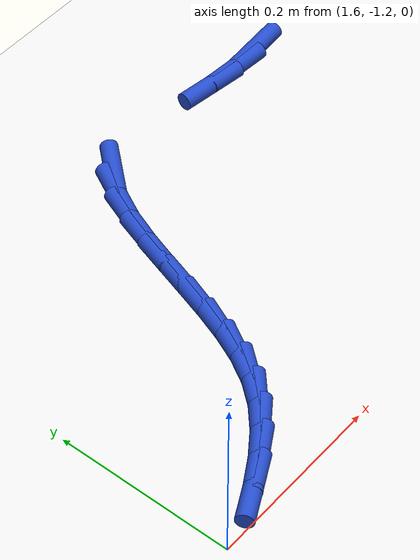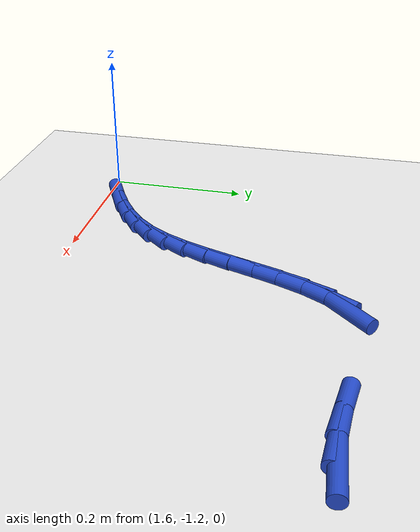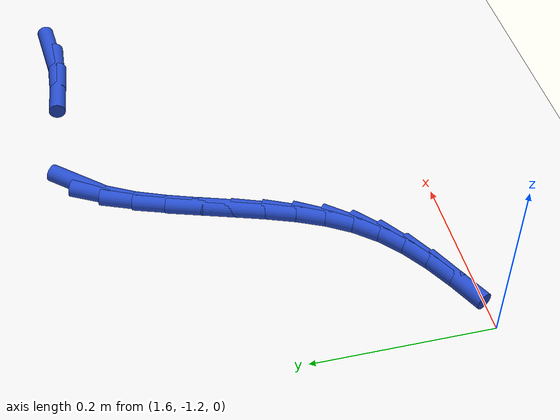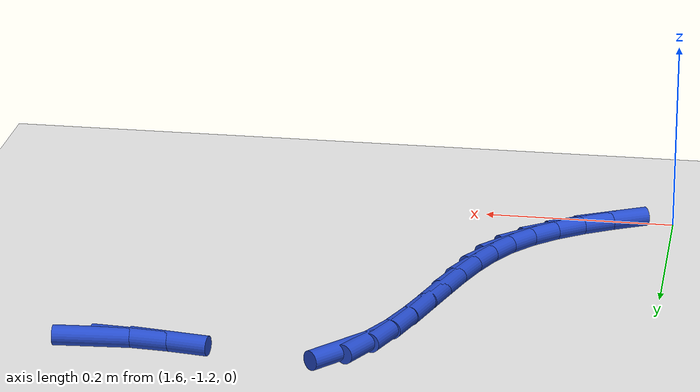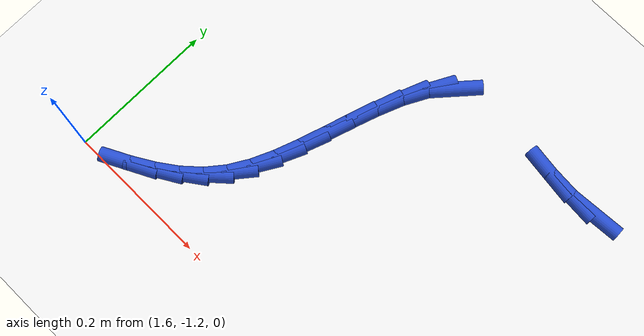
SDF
<sdf version="1.6">
 <world name="default">
  <model name="ground_plane">
   <static>1</static>
   <link name="link">
    <collision name="collision">
     <geometry><plane><normal>0 0 1</normal><size>100 100</size></plane></geometry>
     <surface><friction><ode><mu>100</mu><mu2>50</mu2></ode></friction></surface>
    </collision>
    <visual name="visual">
     <cast_shadows>0</cast_shadows>
     <geometry><plane><normal>0 0 1</normal><size>100 100</size></plane></geometry>
     <material>
      <script><uri>file://media/materials/scripts/gazebo.material</uri><name>Gazebo/WhiteGlow</name></script>
     </material>
    </visual>
   </link>
  </model>
  <model name="line">
   <link name="link_176">
    <pose>2.1372782946144633 -0.8049899044308505 0.01 0 1.57 0.06828388144086499</pose>
    <collision name="collision">
     <geometry><cylinder><radius>0.01</radius><length>0.08</length></cylinder></geometry>
    </collision>
    <visual name="visual">
     <material>
      <script><name>Gazebo/Blue</name><uri>file://media/materials/scripts/gazebo.material</uri></script>
     </material>
     <geometry><cylinder><radius>0.01</radius><length>0.08</length></cylinder></geometry>
    </visual>
   </link>
   <link name="link_177">
    <pose>2.100237076854 -0.8075231610393789 0.01 0 1.57 -0.07292125491009543</pose>
    <collision name="collision">
     <geometry><cylinder><radius>0.01</radius><length>0.08</length></cylinder></geometry>
    </collision>
    <visual name="visual">
     <material>
      <script><name>Gazebo/Blue</name><uri>file://media/materials/scripts/gazebo.material</uri></script>
     </material>
     <geometry><cylinder><radius>0.01</radius><length>0.08</length></cylinder></geometry>
    </visual>
   </link>
   <link name="link_178">
    <pose>2.0619275883440675 -0.8047246228852452 0.01 0 1.57 -0.13635616515950455</pose>
    <collision name="collision">
     <geometry><cylinder><radius>0.01</radius><length>0.08</length></cylinder></geometry>
    </collision>
    <visual name="visual">
     <material>
      <script><name>Gazebo/Blue</name><uri>file://media/materials/scripts/gazebo.material</uri></script>
     </material>
     <geometry><cylinder><radius>0.01</radius><length>0.08</length></cylinder></geometry>
    </visual>
   </link>
   <link name="link_183">
    <pose>1.8925363161567907 -0.8109039917792324 0.01 0 1.57 0.8449516625062025</pose>
    <collision name="collision">
     <geometry><cylinder><radius>0.01</radius><length>0.08</length></cylinder></geometry>
    </collision>
    <visual name="visual">
     <material>
      <script><name>Gazebo/Blue</name><uri>file://media/materials/scripts/gazebo.material</uri></script>
     </material>
     <geometry><cylinder><radius>0.01</radius><length>0.08</length></cylinder></geometry>
    </visual>
   </link>
   <link name="link_184">
    <pose>1.8709752503164991 -0.8351991917820063 0.01 0 1.57 1.081545546890575</pose>
    <collision name="collision">
     <geometry><cylinder><radius>0.01</radius><length>0.08</length></cylinder></geometry>
    </collision>
    <visual name="visual">
     <material>
      <script><name>Gazebo/Blue</name><uri>file://media/materials/scripts/gazebo.material</uri></script>
     </material>
     <geometry><cylinder><radius>0.01</radius><length>0.08</length></cylinder></geometry>
    </visual>
   </link>
   <link name="link_185">
    <pose>1.853942436047005 -0.8671901338002871 0.01 0 1.57 1.192317866892102</pose>
    <collision name="collision">
     <geometry><cylinder><radius>0.01</radius><length>0.08</length></cylinder></geometry>
    </collision>
    <visual name="visual">
     <material>
      <script><name>Gazebo/Blue</name><uri>file://media/materials/scripts/gazebo.material</uri></script>
     </material>
     <geometry><cylinder><radius>0.01</radius><length>0.08</length></cylinder></geometry>
    </visual>
   </link>
   <link name="link_186">
    <pose>1.8399952152549213 -0.9022642885773039 0.01 0 1.57 1.2427163248225774</pose>
    <collision name="collision">
     <geometry><cylinder><radius>0.01</radius><length>0.08</length></cylinder></geometry>
    </collision>
    <visual name="visual">
     <material>
      <script><name>Gazebo/Blue</name><uri>file://media/materials/scripts/gazebo.material</uri></script>
     </material>
     <geometry><cylinder><radius>0.01</radius><length>0.08</length></cylinder></geometry>
    </visual>
   </link>
   <link name="link_187">
    <pose>1.8279379401394695 -0.9376871662890911 0.01 0 1.57 1.2643044122858749</pose>
    <collision name="collision">
     <geometry><cylinder><radius>0.01</radius><length>0.08</length></cylinder></geometry>
    </collision>
    <visual name="visual">
     <material>
      <script><name>Gazebo/Blue</name><uri>file://media/materials/scripts/gazebo.material</uri></script>
     </material>
     <geometry><cylinder><radius>0.01</radius><length>0.08</length></cylinder></geometry>
    </visual>
   </link>
   <link name="link_188">
    <pose>1.8168416000726173 -0.9727507049980421 0.01 0 1.57 1.2573674253273486</pose>
    <collision name="collision">
     <geometry><cylinder><radius>0.01</radius><length>0.08</length></cylinder></geometry>
    </collision>
    <visual name="visual">
     <material>
      <script><name>Gazebo/Blue</name><uri>file://media/materials/scripts/gazebo.material</uri></script>
     </material>
     <geometry><cylinder><radius>0.01</radius><length>0.08</length></cylinder></geometry>
    </visual>
   </link>
   <link name="link_189">
    <pose>1.8057904221180894 -1.006847448497766 0.01 0 1.57 1.2194362349485888</pose>
    <collision name="collision">
     <geometry><cylinder><radius>0.01</radius><length>0.08</length></cylinder></geometry>
    </collision>
    <visual name="visual">
     <material>
      <script><name>Gazebo/Blue</name><uri>file://media/materials/scripts/gazebo.material</uri></script>
     </material>
     <geometry><cylinder><radius>0.01</radius><length>0.08</length></cylinder></geometry>
    </visual>
   </link>
   <link name="link_190">
    <pose>1.7938686333396143 -1.0393699405818693 0.01 0 1.57 1.1464408860846638</pose>
    <collision name="collision">
     <geometry><cylinder><radius>0.01</radius><length>0.08</length></cylinder></geometry>
    </collision>
    <visual name="visual">
     <material>
      <script><name>Gazebo/Blue</name><uri>file://media/materials/scripts/gazebo.material</uri></script>
     </material>
     <geometry><cylinder><radius>0.01</radius><length>0.08</length></cylinder></geometry>
    </visual>
   </link>
   <link name="link_191">
    <pose>1.7801604608009165 -1.0697107250439606 0.01 0 1.57 1.033602756068071</pose>
    <collision name="collision">
     <geometry><cylinder><radius>0.01</radius><length>0.08</length></cylinder></geometry>
    </collision>
    <visual name="visual">
     <material>
      <script><name>Gazebo/Blue</name><uri>file://media/materials/scripts/gazebo.material</uri></script>
     </material>
     <geometry><cylinder><radius>0.01</radius><length>0.08</length></cylinder></geometry>
    </visual>
   </link>
   <link name="link_192">
    <pose>1.7637501315657236 -1.097262345677646 0.01 0 1.57 0.8823373618453553</pose>
    <collision name="collision">
     <geometry><cylinder><radius>0.01</radius><length>0.08</length></cylinder></geometry>
    </collision>
    <visual name="visual">
     <material>
      <script><name>Gazebo/Blue</name><uri>file://media/materials/scripts/gazebo.material</uri></script>
     </material>
     <geometry><cylinder><radius>0.01</radius><length>0.08</length></cylinder></geometry>
    </visual>
   </link>
   <link name="link_193">
    <pose>1.7438079143814398 -1.1215008752595566 0.01 0 1.57 0.733567915778276</pose>
    <collision name="collision">
     <geometry><cylinder><radius>0.01</radius><length>0.08</length></cylinder></geometry>
    </collision>
    <visual name="visual">
     <material>
      <script><name>Gazebo/Blue</name><uri>file://media/materials/scripts/gazebo.material</uri></script>
     </material>
     <geometry><cylinder><radius>0.01</radius><length>0.08</length></cylinder></geometry>
    </visual>
   </link>
   <link name="link_194">
    <pose>1.720308004991931 -1.1426828362457044 0.01 0 1.57 0.6146484754529499</pose>
    <collision name="collision">
     <geometry><cylinder><radius>0.01</radius><length>0.08</length></cylinder></geometry>
    </collision>
    <visual name="visual">
     <material>
      <script><name>Gazebo/Blue</name><uri>file://media/materials/scripts/gazebo.material</uri></script>
     </material>
     <geometry><cylinder><radius>0.01</radius><length>0.08</length></cylinder></geometry>
    </visual>
   </link>
   <link name="link_195">
    <pose>1.6936630882391934 -1.1614904348638215 0.01 0 1.57 0.5277084787648283</pose>
    <collision name="collision">
     <geometry><cylinder><radius>0.01</radius><length>0.08</length></cylinder></geometry>
    </collision>
    <visual name="visual">
     <material>
      <script><name>Gazebo/Blue</name><uri>file://media/materials/scripts/gazebo.material</uri></script>
     </material>
     <geometry><cylinder><radius>0.01</radius><length>0.08</length></cylinder></geometry>
    </visual>
   </link>
   <link name="link_196">
    <pose>1.6642902733769802 -1.1786101725460032 0.01 0 1.57 0.4706066532731593</pose>
    <collision name="collision">
     <geometry><cylinder><radius>0.01</radius><length>0.08</length></cylinder></geometry>
    </collision>
    <visual name="visual">
     <material>
      <script><name>Gazebo/Blue</name><uri>file://media/materials/scripts/gazebo.material</uri></script>
     </material>
     <geometry><cylinder><radius>0.01</radius><length>0.08</length></cylinder></geometry>
    </visual>
   </link>
  </model>
 </world>
</sdf>
